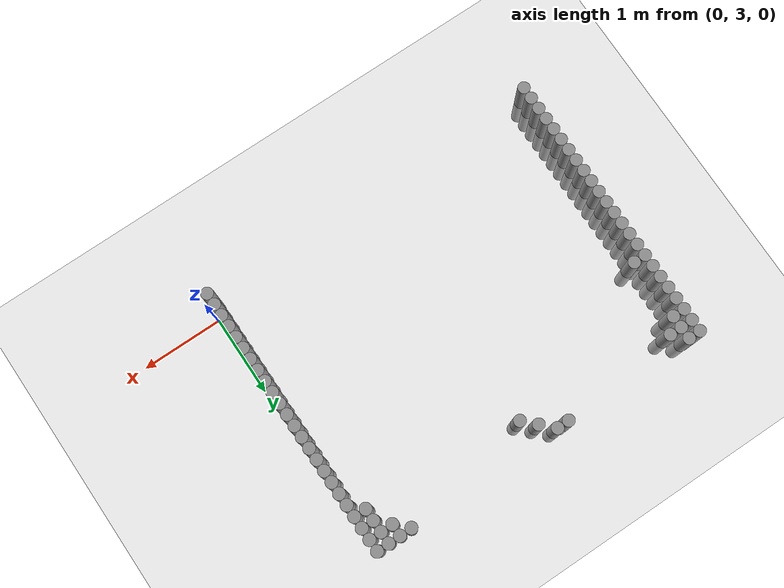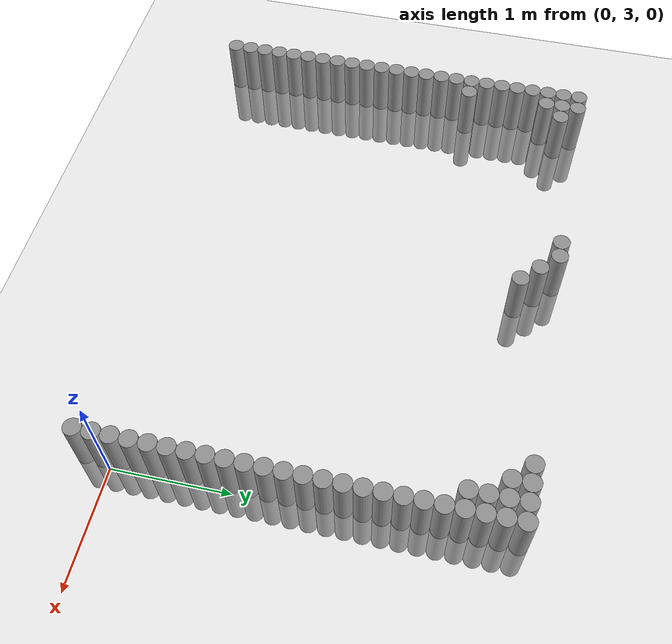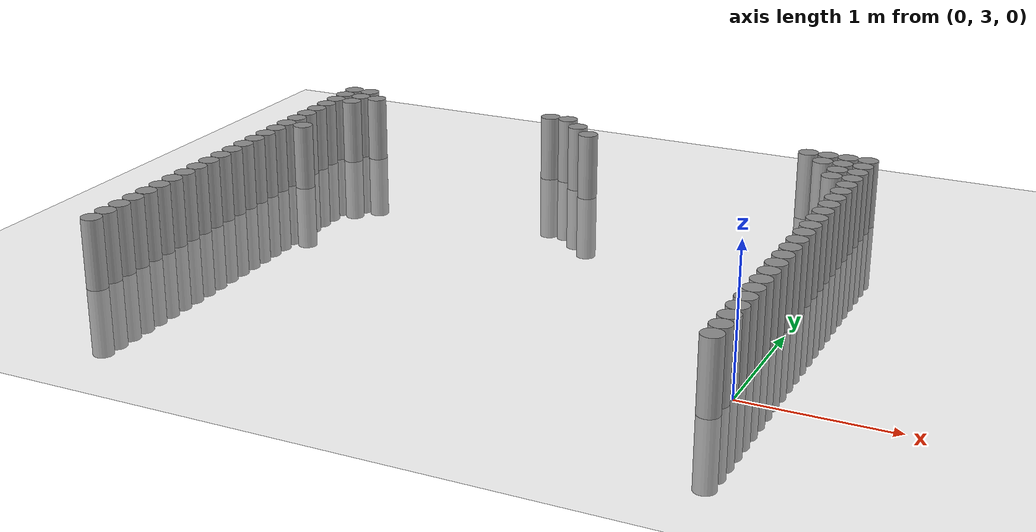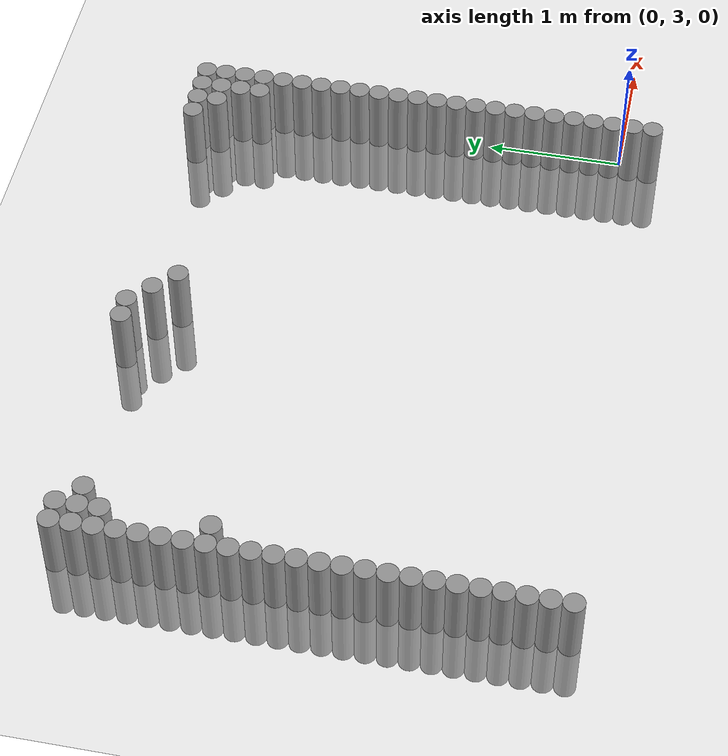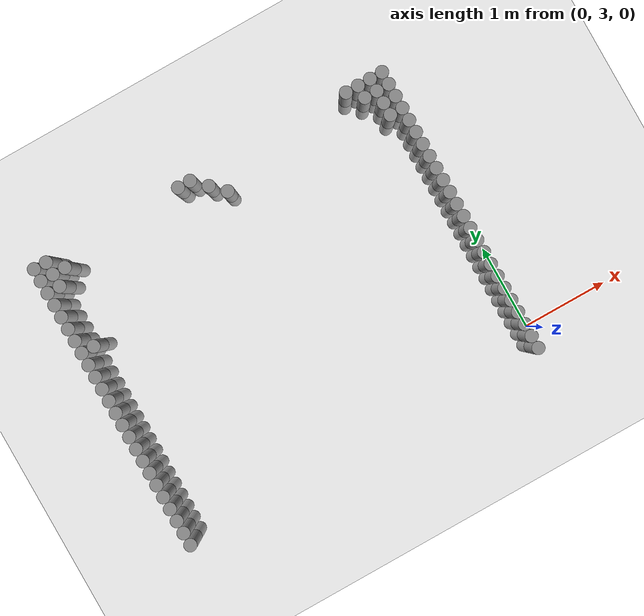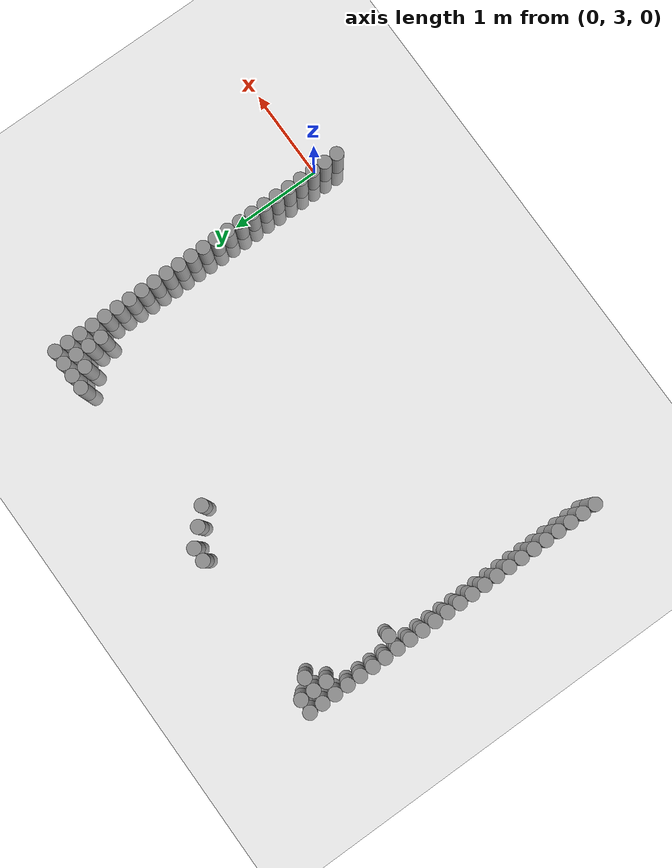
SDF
<sdf version="1.6">
 <world name="default">
  <model name="ground_plane">
   <static>1</static>
   <static>1</static>
   <link name="link">
    <collision name="collision">
     <geometry><plane><normal>0 0 1</normal><size>100 100</size></plane></geometry>
     <surface><friction><ode><mu>100</mu><mu2>50</mu2></ode></friction></surface>
    </collision>
    <visual name="visual">
     <cast_shadows>0</cast_shadows>
     <geometry><plane><normal>0 0 1</normal><size>100 100</size></plane></geometry>
     <material>
      <script><uri>file://media/materials/scripts/gazebo.material</uri><name>Gazebo/Grey</name></script>
     </material>
    </visual>
   </link>
  </model>
  <model name="unit_cylinder_64">
   <static>1</static>
   <pose>-0.075000 2.775000 0.000000 0.000000 0.000000 0.000000</pose>
   <link name="link">
    <inertial>
     <mass>1</mass>
     <inertia><ixx>0.145833</ixx><ixy>0</ixy><ixz>0</ixz><iyy>0.145833</iyy><iyz>0</iyz><izz>0.125</izz></inertia>
    </inertial>
    <collision name="collision">
     <geometry><cylinder><radius>0.075000</radius><length>1</length></cylinder></geometry>
    </collision>
    <visual name="visual">
     <geometry><cylinder><radius>0.075000</radius><length>1</length></cylinder></geometry>
     <material>
      <script><name>Gazebo/Grey</name><uri>file://media/materials/scripts/gazebo.material</uri></script>
     </material>
    </visual>
   </link>
  </model>
  <model name="unit_cylinder_65">
   <static>1</static>
   <pose>-4.425000 2.775000 0.000000 0.000000 0.000000 0.000000</pose>
   <link name="link">
    <inertial>
     <mass>1</mass>
     <inertia><ixx>0.145833</ixx><ixy>0</ixy><ixz>0</ixz><iyy>0.145833</iyy><iyz>0</iyz><izz>0.125</izz></inertia>
    </inertial>
    <collision name="collision">
     <geometry><cylinder><radius>0.075000</radius><length>1</length></cylinder></geometry>
    </collision>
    <visual name="visual">
     <geometry><cylinder><radius>0.075000</radius><length>1</length></cylinder></geometry>
     <material>
      <script><name>Gazebo/Grey</name><uri>file://media/materials/scripts/gazebo.material</uri></script>
     </material>
    </visual>
   </link>
  </model>
  <model name="unit_cylinder_66">
   <static>1</static>
   <pose>-0.075000 2.925000 0.000000 0.000000 0.000000 0.000000</pose>
   <link name="link">
    <inertial>
     <mass>1</mass>
     <inertia><ixx>0.145833</ixx><ixy>0</ixy><ixz>0</ixz><iyy>0.145833</iyy><iyz>0</iyz><izz>0.125</izz></inertia>
    </inertial>
    <collision name="collision">
     <geometry><cylinder><radius>0.075000</radius><length>1</length></cylinder></geometry>
    </collision>
    <visual name="visual">
     <geometry><cylinder><radius>0.075000</radius><length>1</length></cylinder></geometry>
     <material>
      <script><name>Gazebo/Grey</name><uri>file://media/materials/scripts/gazebo.material</uri></script>
     </material>
    </visual>
   </link>
  </model>
  <model name="unit_cylinder_67">
   <static>1</static>
   <pose>-4.425000 2.925000 0.000000 0.000000 0.000000 0.000000</pose>
   <link name="link">
    <inertial>
     <mass>1</mass>
     <inertia><ixx>0.145833</ixx><ixy>0</ixy><ixz>0</ixz><iyy>0.145833</iyy><iyz>0</iyz><izz>0.125</izz></inertia>
    </inertial>
    <collision name="collision">
     <geometry><cylinder><radius>0.075000</radius><length>1</length></cylinder></geometry>
    </collision>
    <visual name="visual">
     <geometry><cylinder><radius>0.075000</radius><length>1</length></cylinder></geometry>
     <material>
      <script><name>Gazebo/Grey</name><uri>file://media/materials/scripts/gazebo.material</uri></script>
     </material>
    </visual>
   </link>
  </model>
  <model name="unit_cylinder_68">
   <static>1</static>
   <pose>-0.075000 3.075000 0.000000 0.000000 0.000000 0.000000</pose>
   <link name="link">
    <inertial>
     <mass>1</mass>
     <inertia><ixx>0.145833</ixx><ixy>0</ixy><ixz>0</ixz><iyy>0.145833</iyy><iyz>0</iyz><izz>0.125</izz></inertia>
    </inertial>
    <collision name="collision">
     <geometry><cylinder><radius>0.075000</radius><length>1</length></cylinder></geometry>
    </collision>
    <visual name="visual">
     <geometry><cylinder><radius>0.075000</radius><length>1</length></cylinder></geometry>
     <material>
      <script><name>Gazebo/Grey</name><uri>file://media/materials/scripts/gazebo.material</uri></script>
     </material>
    </visual>
   </link>
  </model>
  <model name="unit_cylinder_69">
   <static>1</static>
   <pose>-4.425000 3.075000 0.000000 0.000000 0.000000 0.000000</pose>
   <link name="link">
    <inertial>
     <mass>1</mass>
     <inertia><ixx>0.145833</ixx><ixy>0</ixy><ixz>0</ixz><iyy>0.145833</iyy><iyz>0</iyz><izz>0.125</izz></inertia>
    </inertial>
    <collision name="collision">
     <geometry><cylinder><radius>0.075000</radius><length>1</length></cylinder></geometry>
    </collision>
    <visual name="visual">
     <geometry><cylinder><radius>0.075000</radius><length>1</length></cylinder></geometry>
     <material>
      <script><name>Gazebo/Grey</name><uri>file://media/materials/scripts/gazebo.material</uri></script>
     </material>
    </visual>
   </link>
  </model>
  <model name="unit_cylinder_70">
   <static>1</static>
   <pose>-0.075000 3.225000 0.000000 0.000000 0.000000 0.000000</pose>
   <link name="link">
    <inertial>
     <mass>1</mass>
     <inertia><ixx>0.145833</ixx><ixy>0</ixy><ixz>0</ixz><iyy>0.145833</iyy><iyz>0</iyz><izz>0.125</izz></inertia>
    </inertial>
    <collision name="collision">
     <geometry><cylinder><radius>0.075000</radius><length>1</length></cylinder></geometry>
    </collision>
    <visual name="visual">
     <geometry><cylinder><radius>0.075000</radius><length>1</length></cylinder></geometry>
     <material>
      <script><name>Gazebo/Grey</name><uri>file://media/materials/scripts/gazebo.material</uri></script>
     </material>
    </visual>
   </link>
  </model>
  <model name="unit_cylinder_71">
   <static>1</static>
   <pose>-4.425000 3.225000 0.000000 0.000000 0.000000 0.000000</pose>
   <link name="link">
    <inertial>
     <mass>1</mass>
     <inertia><ixx>0.145833</ixx><ixy>0</ixy><ixz>0</ixz><iyy>0.145833</iyy><iyz>0</iyz><izz>0.125</izz></inertia>
    </inertial>
    <collision name="collision">
     <geometry><cylinder><radius>0.075000</radius><length>1</length></cylinder></geometry>
    </collision>
    <visual name="visual">
     <geometry><cylinder><radius>0.075000</radius><length>1</length></cylinder></geometry>
     <material>
      <script><name>Gazebo/Grey</name><uri>file://media/materials/scripts/gazebo.material</uri></script>
     </material>
    </visual>
   </link>
  </model>
  <model name="unit_cylinder_72">
   <static>1</static>
   <pose>-0.075000 3.375000 0.000000 0.000000 0.000000 0.000000</pose>
   <link name="link">
    <inertial>
     <mass>1</mass>
     <inertia><ixx>0.145833</ixx><ixy>0</ixy><ixz>0</ixz><iyy>0.145833</iyy><iyz>0</iyz><izz>0.125</izz></inertia>
    </inertial>
    <collision name="collision">
     <geometry><cylinder><radius>0.075000</radius><length>1</length></cylinder></geometry>
    </collision>
    <visual name="visual">
     <geometry><cylinder><radius>0.075000</radius><length>1</length></cylinder></geometry>
     <material>
      <script><name>Gazebo/Grey</name><uri>file://media/materials/scripts/gazebo.material</uri></script>
     </material>
    </visual>
   </link>
  </model>
  <model name="unit_cylinder_73">
   <static>1</static>
   <pose>-4.425000 3.375000 0.000000 0.000000 0.000000 0.000000</pose>
   <link name="link">
    <inertial>
     <mass>1</mass>
     <inertia><ixx>0.145833</ixx><ixy>0</ixy><ixz>0</ixz><iyy>0.145833</iyy><iyz>0</iyz><izz>0.125</izz></inertia>
    </inertial>
    <collision name="collision">
     <geometry><cylinder><radius>0.075000</radius><length>1</length></cylinder></geometry>
    </collision>
    <visual name="visual">
     <geometry><cylinder><radius>0.075000</radius><length>1</length></cylinder></geometry>
     <material>
      <script><name>Gazebo/Grey</name><uri>file://media/materials/scripts/gazebo.material</uri></script>
     </material>
    </visual>
   </link>
  </model>
  <model name="unit_cylinder_74">
   <static>1</static>
   <pose>-0.075000 3.525000 0.000000 0.000000 0.000000 0.000000</pose>
   <link name="link">
    <inertial>
     <mass>1</mass>
     <inertia><ixx>0.145833</ixx><ixy>0</ixy><ixz>0</ixz><iyy>0.145833</iyy><iyz>0</iyz><izz>0.125</izz></inertia>
    </inertial>
    <collision name="collision">
     <geometry><cylinder><radius>0.075000</radius><length>1</length></cylinder></geometry>
    </collision>
    <visual name="visual">
     <geometry><cylinder><radius>0.075000</radius><length>1</length></cylinder></geometry>
     <material>
      <script><name>Gazebo/Grey</name><uri>file://media/materials/scripts/gazebo.material</uri></script>
     </material>
    </visual>
   </link>
  </model>
  <model name="unit_cylinder_75">
   <static>1</static>
   <pose>-4.425000 3.525000 0.000000 0.000000 0.000000 0.000000</pose>
   <link name="link">
    <inertial>
     <mass>1</mass>
     <inertia><ixx>0.145833</ixx><ixy>0</ixy><ixz>0</ixz><iyy>0.145833</iyy><iyz>0</iyz><izz>0.125</izz></inertia>
    </inertial>
    <collision name="collision">
     <geometry><cylinder><radius>0.075000</radius><length>1</length></cylinder></geometry>
    </collision>
    <visual name="visual">
     <geometry><cylinder><radius>0.075000</radius><length>1</length></cylinder></geometry>
     <material>
      <script><name>Gazebo/Grey</name><uri>file://media/materials/scripts/gazebo.material</uri></script>
     </material>
    </visual>
   </link>
  </model>
  <model name="unit_cylinder_76">
   <static>1</static>
   <pose>-0.075000 3.675000 0.000000 0.000000 0.000000 0.000000</pose>
   <link name="link">
    <inertial>
     <mass>1</mass>
     <inertia><ixx>0.145833</ixx><ixy>0</ixy><ixz>0</ixz><iyy>0.145833</iyy><iyz>0</iyz><izz>0.125</izz></inertia>
    </inertial>
    <collision name="collision">
     <geometry><cylinder><radius>0.075000</radius><length>1</length></cylinder></geometry>
    </collision>
    <visual name="visual">
     <geometry><cylinder><radius>0.075000</radius><length>1</length></cylinder></geometry>
     <material>
      <script><name>Gazebo/Grey</name><uri>file://media/materials/scripts/gazebo.material</uri></script>
     </material>
    </visual>
   </link>
  </model>
  <model name="unit_cylinder_77">
   <static>1</static>
   <pose>-4.425000 3.675000 0.000000 0.000000 0.000000 0.000000</pose>
   <link name="link">
    <inertial>
     <mass>1</mass>
     <inertia><ixx>0.145833</ixx><ixy>0</ixy><ixz>0</ixz><iyy>0.145833</iyy><iyz>0</iyz><izz>0.125</izz></inertia>
    </inertial>
    <collision name="collision">
     <geometry><cylinder><radius>0.075000</radius><length>1</length></cylinder></geometry>
    </collision>
    <visual name="visual">
     <geometry><cylinder><radius>0.075000</radius><length>1</length></cylinder></geometry>
     <material>
      <script><name>Gazebo/Grey</name><uri>file://media/materials/scripts/gazebo.material</uri></script>
     </material>
    </visual>
   </link>
  </model>
  <model name="unit_cylinder_78">
   <static>1</static>
   <pose>-0.075000 3.825000 0.000000 0.000000 0.000000 0.000000</pose>
   <link name="link">
    <inertial>
     <mass>1</mass>
     <inertia><ixx>0.145833</ixx><ixy>0</ixy><ixz>0</ixz><iyy>0.145833</iyy><iyz>0</iyz><izz>0.125</izz></inertia>
    </inertial>
    <collision name="collision">
     <geometry><cylinder><radius>0.075000</radius><length>1</length></cylinder></geometry>
    </collision>
    <visual name="visual">
     <geometry><cylinder><radius>0.075000</radius><length>1</length></cylinder></geometry>
     <material>
      <script><name>Gazebo/Grey</name><uri>file://media/materials/scripts/gazebo.material</uri></script>
     </material>
    </visual>
   </link>
  </model>
  <model name="unit_cylinder_79">
   <static>1</static>
   <pose>-4.425000 3.825000 0.000000 0.000000 0.000000 0.000000</pose>
   <link name="link">
    <inertial>
     <mass>1</mass>
     <inertia><ixx>0.145833</ixx><ixy>0</ixy><ixz>0</ixz><iyy>0.145833</iyy><iyz>0</iyz><izz>0.125</izz></inertia>
    </inertial>
    <collision name="collision">
     <geometry><cylinder><radius>0.075000</radius><length>1</length></cylinder></geometry>
    </collision>
    <visual name="visual">
     <geometry><cylinder><radius>0.075000</radius><length>1</length></cylinder></geometry>
     <material>
      <script><name>Gazebo/Grey</name><uri>file://media/materials/scripts/gazebo.material</uri></script>
     </material>
    </visual>
   </link>
  </model>
  <model name="unit_cylinder_80">
   <static>1</static>
   <pose>-0.075000 3.975000 0.000000 0.000000 0.000000 0.000000</pose>
   <link name="link">
    <inertial>
     <mass>1</mass>
     <inertia><ixx>0.145833</ixx><ixy>0</ixy><ixz>0</ixz><iyy>0.145833</iyy><iyz>0</iyz><izz>0.125</izz></inertia>
    </inertial>
    <collision name="collision">
     <geometry><cylinder><radius>0.075000</radius><length>1</length></cylinder></geometry>
    </collision>
    <visual name="visual">
     <geometry><cylinder><radius>0.075000</radius><length>1</length></cylinder></geometry>
     <material>
      <script><name>Gazebo/Grey</name><uri>file://media/materials/scripts/gazebo.material</uri></script>
     </material>
    </visual>
   </link>
  </model>
  <model name="unit_cylinder_81">
   <static>1</static>
   <pose>-4.425000 3.975000 0.000000 0.000000 0.000000 0.000000</pose>
   <link name="link">
    <inertial>
     <mass>1</mass>
     <inertia><ixx>0.145833</ixx><ixy>0</ixy><ixz>0</ixz><iyy>0.145833</iyy><iyz>0</iyz><izz>0.125</izz></inertia>
    </inertial>
    <collision name="collision">
     <geometry><cylinder><radius>0.075000</radius><length>1</length></cylinder></geometry>
    </collision>
    <visual name="visual">
     <geometry><cylinder><radius>0.075000</radius><length>1</length></cylinder></geometry>
     <material>
      <script><name>Gazebo/Grey</name><uri>file://media/materials/scripts/gazebo.material</uri></script>
     </material>
    </visual>
   </link>
  </model>
  <model name="unit_cylinder_82">
   <static>1</static>
   <pose>-0.075000 4.125000 0.000000 0.000000 0.000000 0.000000</pose>
   <link name="link">
    <inertial>
     <mass>1</mass>
     <inertia><ixx>0.145833</ixx><ixy>0</ixy><ixz>0</ixz><iyy>0.145833</iyy><iyz>0</iyz><izz>0.125</izz></inertia>
    </inertial>
    <collision name="collision">
     <geometry><cylinder><radius>0.075000</radius><length>1</length></cylinder></geometry>
    </collision>
    <visual name="visual">
     <geometry><cylinder><radius>0.075000</radius><length>1</length></cylinder></geometry>
     <material>
      <script><name>Gazebo/Grey</name><uri>file://media/materials/scripts/gazebo.material</uri></script>
     </material>
    </visual>
   </link>
  </model>
  <model name="unit_cylinder_83">
   <static>1</static>
   <pose>-4.425000 4.125000 0.000000 0.000000 0.000000 0.000000</pose>
   <link name="link">
    <inertial>
     <mass>1</mass>
     <inertia><ixx>0.145833</ixx><ixy>0</ixy><ixz>0</ixz><iyy>0.145833</iyy><iyz>0</iyz><izz>0.125</izz></inertia>
    </inertial>
    <collision name="collision">
     <geometry><cylinder><radius>0.075000</radius><length>1</length></cylinder></geometry>
    </collision>
    <visual name="visual">
     <geometry><cylinder><radius>0.075000</radius><length>1</length></cylinder></geometry>
     <material>
      <script><name>Gazebo/Grey</name><uri>file://media/materials/scripts/gazebo.material</uri></script>
     </material>
    </visual>
   </link>
  </model>
  <model name="unit_cylinder_84">
   <static>1</static>
   <pose>-0.075000 4.275000 0.000000 0.000000 0.000000 0.000000</pose>
   <link name="link">
    <inertial>
     <mass>1</mass>
     <inertia><ixx>0.145833</ixx><ixy>0</ixy><ixz>0</ixz><iyy>0.145833</iyy><iyz>0</iyz><izz>0.125</izz></inertia>
    </inertial>
    <collision name="collision">
     <geometry><cylinder><radius>0.075000</radius><length>1</length></cylinder></geometry>
    </collision>
    <visual name="visual">
     <geometry><cylinder><radius>0.075000</radius><length>1</length></cylinder></geometry>
     <material>
      <script><name>Gazebo/Grey</name><uri>file://media/materials/scripts/gazebo.material</uri></script>
     </material>
    </visual>
   </link>
  </model>
  <model name="unit_cylinder_85">
   <static>1</static>
   <pose>-4.425000 4.275000 0.000000 0.000000 0.000000 0.000000</pose>
   <link name="link">
    <inertial>
     <mass>1</mass>
     <inertia><ixx>0.145833</ixx><ixy>0</ixy><ixz>0</ixz><iyy>0.145833</iyy><iyz>0</iyz><izz>0.125</izz></inertia>
    </inertial>
    <collision name="collision">
     <geometry><cylinder><radius>0.075000</radius><length>1</length></cylinder></geometry>
    </collision>
    <visual name="visual">
     <geometry><cylinder><radius>0.075000</radius><length>1</length></cylinder></geometry>
     <material>
      <script><name>Gazebo/Grey</name><uri>file://media/materials/scripts/gazebo.material</uri></script>
     </material>
    </visual>
   </link>
  </model>
  <model name="unit_cylinder_86">
   <static>1</static>
   <pose>-0.075000 4.425000 0.000000 0.000000 0.000000 0.000000</pose>
   <link name="link">
    <inertial>
     <mass>1</mass>
     <inertia><ixx>0.145833</ixx><ixy>0</ixy><ixz>0</ixz><iyy>0.145833</iyy><iyz>0</iyz><izz>0.125</izz></inertia>
    </inertial>
    <collision name="collision">
     <geometry><cylinder><radius>0.075000</radius><length>1</length></cylinder></geometry>
    </collision>
    <visual name="visual">
     <geometry><cylinder><radius>0.075000</radius><length>1</length></cylinder></geometry>
     <material>
      <script><name>Gazebo/Grey</name><uri>file://media/materials/scripts/gazebo.material</uri></script>
     </material>
    </visual>
   </link>
  </model>
  <model name="unit_cylinder_87">
   <static>1</static>
   <pose>-4.425000 4.425000 0.000000 0.000000 0.000000 0.000000</pose>
   <link name="link">
    <inertial>
     <mass>1</mass>
     <inertia><ixx>0.145833</ixx><ixy>0</ixy><ixz>0</ixz><iyy>0.145833</iyy><iyz>0</iyz><izz>0.125</izz></inertia>
    </inertial>
    <collision name="collision">
     <geometry><cylinder><radius>0.075000</radius><length>1</length></cylinder></geometry>
    </collision>
    <visual name="visual">
     <geometry><cylinder><radius>0.075000</radius><length>1</length></cylinder></geometry>
     <material>
      <script><name>Gazebo/Grey</name><uri>file://media/materials/scripts/gazebo.material</uri></script>
     </material>
    </visual>
   </link>
  </model>
  <model name="unit_cylinder_88">
   <static>1</static>
   <pose>-0.075000 4.575000 0.000000 0.000000 0.000000 0.000000</pose>
   <link name="link">
    <inertial>
     <mass>1</mass>
     <inertia><ixx>0.145833</ixx><ixy>0</ixy><ixz>0</ixz><iyy>0.145833</iyy><iyz>0</iyz><izz>0.125</izz></inertia>
    </inertial>
    <collision name="collision">
     <geometry><cylinder><radius>0.075000</radius><length>1</length></cylinder></geometry>
    </collision>
    <visual name="visual">
     <geometry><cylinder><radius>0.075000</radius><length>1</length></cylinder></geometry>
     <material>
      <script><name>Gazebo/Grey</name><uri>file://media/materials/scripts/gazebo.material</uri></script>
     </material>
    </visual>
   </link>
  </model>
  <model name="unit_cylinder_89">
   <static>1</static>
   <pose>-4.425000 4.575000 0.000000 0.000000 0.000000 0.000000</pose>
   <link name="link">
    <inertial>
     <mass>1</mass>
     <inertia><ixx>0.145833</ixx><ixy>0</ixy><ixz>0</ixz><iyy>0.145833</iyy><iyz>0</iyz><izz>0.125</izz></inertia>
    </inertial>
    <collision name="collision">
     <geometry><cylinder><radius>0.075000</radius><length>1</length></cylinder></geometry>
    </collision>
    <visual name="visual">
     <geometry><cylinder><radius>0.075000</radius><length>1</length></cylinder></geometry>
     <material>
      <script><name>Gazebo/Grey</name><uri>file://media/materials/scripts/gazebo.material</uri></script>
     </material>
    </visual>
   </link>
  </model>
  <model name="unit_cylinder_90">
   <static>1</static>
   <pose>-0.075000 4.725000 0.000000 0.000000 0.000000 0.000000</pose>
   <link name="link">
    <inertial>
     <mass>1</mass>
     <inertia><ixx>0.145833</ixx><ixy>0</ixy><ixz>0</ixz><iyy>0.145833</iyy><iyz>0</iyz><izz>0.125</izz></inertia>
    </inertial>
    <collision name="collision">
     <geometry><cylinder><radius>0.075000</radius><length>1</length></cylinder></geometry>
    </collision>
    <visual name="visual">
     <geometry><cylinder><radius>0.075000</radius><length>1</length></cylinder></geometry>
     <material>
      <script><name>Gazebo/Grey</name><uri>file://media/materials/scripts/gazebo.material</uri></script>
     </material>
    </visual>
   </link>
  </model>
  <model name="unit_cylinder_91">
   <static>1</static>
   <pose>-4.425000 4.725000 0.000000 0.000000 0.000000 0.000000</pose>
   <link name="link">
    <inertial>
     <mass>1</mass>
     <inertia><ixx>0.145833</ixx><ixy>0</ixy><ixz>0</ixz><iyy>0.145833</iyy><iyz>0</iyz><izz>0.125</izz></inertia>
    </inertial>
    <collision name="collision">
     <geometry><cylinder><radius>0.075000</radius><length>1</length></cylinder></geometry>
    </collision>
    <visual name="visual">
     <geometry><cylinder><radius>0.075000</radius><length>1</length></cylinder></geometry>
     <material>
      <script><name>Gazebo/Grey</name><uri>file://media/materials/scripts/gazebo.material</uri></script>
     </material>
    </visual>
   </link>
  </model>
  <model name="unit_cylinder_92">
   <static>1</static>
   <pose>-0.075000 4.875000 0.000000 0.000000 0.000000 0.000000</pose>
   <link name="link">
    <inertial>
     <mass>1</mass>
     <inertia><ixx>0.145833</ixx><ixy>0</ixy><ixz>0</ixz><iyy>0.145833</iyy><iyz>0</iyz><izz>0.125</izz></inertia>
    </inertial>
    <collision name="collision">
     <geometry><cylinder><radius>0.075000</radius><length>1</length></cylinder></geometry>
    </collision>
    <visual name="visual">
     <geometry><cylinder><radius>0.075000</radius><length>1</length></cylinder></geometry>
     <material>
      <script><name>Gazebo/Grey</name><uri>file://media/materials/scripts/gazebo.material</uri></script>
     </material>
    </visual>
   </link>
  </model>
  <model name="unit_cylinder_93">
   <static>1</static>
   <pose>-4.425000 4.875000 0.000000 0.000000 0.000000 0.000000</pose>
   <link name="link">
    <inertial>
     <mass>1</mass>
     <inertia><ixx>0.145833</ixx><ixy>0</ixy><ixz>0</ixz><iyy>0.145833</iyy><iyz>0</iyz><izz>0.125</izz></inertia>
    </inertial>
    <collision name="collision">
     <geometry><cylinder><radius>0.075000</radius><length>1</length></cylinder></geometry>
    </collision>
    <visual name="visual">
     <geometry><cylinder><radius>0.075000</radius><length>1</length></cylinder></geometry>
     <material>
      <script><name>Gazebo/Grey</name><uri>file://media/materials/scripts/gazebo.material</uri></script>
     </material>
    </visual>
   </link>
  </model>
  <model name="unit_cylinder_94">
   <static>1</static>
   <pose>-0.075000 5.025000 0.000000 0.000000 0.000000 0.000000</pose>
   <link name="link">
    <inertial>
     <mass>1</mass>
     <inertia><ixx>0.145833</ixx><ixy>0</ixy><ixz>0</ixz><iyy>0.145833</iyy><iyz>0</iyz><izz>0.125</izz></inertia>
    </inertial>
    <collision name="collision">
     <geometry><cylinder><radius>0.075000</radius><length>1</length></cylinder></geometry>
    </collision>
    <visual name="visual">
     <geometry><cylinder><radius>0.075000</radius><length>1</length></cylinder></geometry>
     <material>
      <script><name>Gazebo/Grey</name><uri>file://media/materials/scripts/gazebo.material</uri></script>
     </material>
    </visual>
   </link>
  </model>
  <model name="unit_cylinder_95">
   <static>1</static>
   <pose>-4.425000 5.025000 0.000000 0.000000 0.000000 0.000000</pose>
   <link name="link">
    <inertial>
     <mass>1</mass>
     <inertia><ixx>0.145833</ixx><ixy>0</ixy><ixz>0</ixz><iyy>0.145833</iyy><iyz>0</iyz><izz>0.125</izz></inertia>
    </inertial>
    <collision name="collision">
     <geometry><cylinder><radius>0.075000</radius><length>1</length></cylinder></geometry>
    </collision>
    <visual name="visual">
     <geometry><cylinder><radius>0.075000</radius><length>1</length></cylinder></geometry>
     <material>
      <script><name>Gazebo/Grey</name><uri>file://media/materials/scripts/gazebo.material</uri></script>
     </material>
    </visual>
   </link>
  </model>
  <model name="unit_cylinder_96">
   <static>1</static>
   <pose>-4.425000 5.175000 0.000000 0.000000 0.000000 0.000000</pose>
   <link name="link">
    <inertial>
     <mass>1</mass>
     <inertia><ixx>0.145833</ixx><ixy>0</ixy><ixz>0</ixz><iyy>0.145833</iyy><iyz>0</iyz><izz>0.125</izz></inertia>
    </inertial>
    <collision name="collision">
     <geometry><cylinder><radius>0.075000</radius><length>1</length></cylinder></geometry>
    </collision>
    <visual name="visual">
     <geometry><cylinder><radius>0.075000</radius><length>1</length></cylinder></geometry>
     <material>
      <script><name>Gazebo/Grey</name><uri>file://media/materials/scripts/gazebo.material</uri></script>
     </material>
    </visual>
   </link>
  </model>
  <model name="unit_cylinder_97">
   <static>1</static>
   <pose>-4.425000 5.325000 0.000000 0.000000 0.000000 0.000000</pose>
   <link name="link">
    <inertial>
     <mass>1</mass>
     <inertia><ixx>0.145833</ixx><ixy>0</ixy><ixz>0</ixz><iyy>0.145833</iyy><iyz>0</iyz><izz>0.125</izz></inertia>
    </inertial>
    <collision name="collision">
     <geometry><cylinder><radius>0.075000</radius><length>1</length></cylinder></geometry>
    </collision>
    <visual name="visual">
     <geometry><cylinder><radius>0.075000</radius><length>1</length></cylinder></geometry>
     <material>
      <script><name>Gazebo/Grey</name><uri>file://media/materials/scripts/gazebo.material</uri></script>
     </material>
    </visual>
   </link>
  </model>
  <model name="unit_cylinder_98">
   <static>1</static>
   <pose>-4.425000 5.475000 0.000000 0.000000 0.000000 0.000000</pose>
   <link name="link">
    <inertial>
     <mass>1</mass>
     <inertia><ixx>0.145833</ixx><ixy>0</ixy><ixz>0</ixz><iyy>0.145833</iyy><iyz>0</iyz><izz>0.125</izz></inertia>
    </inertial>
    <collision name="collision">
     <geometry><cylinder><radius>0.075000</radius><length>1</length></cylinder></geometry>
    </collision>
    <visual name="visual">
     <geometry><cylinder><radius>0.075000</radius><length>1</length></cylinder></geometry>
     <material>
      <script><name>Gazebo/Grey</name><uri>file://media/materials/scripts/gazebo.material</uri></script>
     </material>
    </visual>
   </link>
  </model>
  <model name="unit_cylinder_99">
   <static>1</static>
   <pose>-4.425000 5.625000 0.000000 0.000000 0.000000 0.000000</pose>
   <link name="link">
    <inertial>
     <mass>1</mass>
     <inertia><ixx>0.145833</ixx><ixy>0</ixy><ixz>0</ixz><iyy>0.145833</iyy><iyz>0</iyz><izz>0.125</izz></inertia>
    </inertial>
    <collision name="collision">
     <geometry><cylinder><radius>0.075000</radius><length>1</length></cylinder></geometry>
    </collision>
    <visual name="visual">
     <geometry><cylinder><radius>0.075000</radius><length>1</length></cylinder></geometry>
     <material>
      <script><name>Gazebo/Grey</name><uri>file://media/materials/scripts/gazebo.material</uri></script>
     </material>
    </visual>
   </link>
  </model>
  <model name="unit_cylinder_100">
   <static>1</static>
   <pose>-4.425000 5.775000 0.000000 0.000000 0.000000 0.000000</pose>
   <link name="link">
    <inertial>
     <mass>1</mass>
     <inertia><ixx>0.145833</ixx><ixy>0</ixy><ixz>0</ixz><iyy>0.145833</iyy><iyz>0</iyz><izz>0.125</izz></inertia>
    </inertial>
    <collision name="collision">
     <geometry><cylinder><radius>0.075000</radius><length>1</length></cylinder></geometry>
    </collision>
    <visual name="visual">
     <geometry><cylinder><radius>0.075000</radius><length>1</length></cylinder></geometry>
     <material>
      <script><name>Gazebo/Grey</name><uri>file://media/materials/scripts/gazebo.material</uri></script>
     </material>
    </visual>
   </link>
  </model>
  <model name="unit_cylinder_101">
   <static>1</static>
   <pose>-4.425000 5.925000 0.000000 0.000000 0.000000 0.000000</pose>
   <link name="link">
    <inertial>
     <mass>1</mass>
     <inertia><ixx>0.145833</ixx><ixy>0</ixy><ixz>0</ixz><iyy>0.145833</iyy><iyz>0</iyz><izz>0.125</izz></inertia>
    </inertial>
    <collision name="collision">
     <geometry><cylinder><radius>0.075000</radius><length>1</length></cylinder></geometry>
    </collision>
    <visual name="visual">
     <geometry><cylinder><radius>0.075000</radius><length>1</length></cylinder></geometry>
     <material>
      <script><name>Gazebo/Grey</name><uri>file://media/materials/scripts/gazebo.material</uri></script>
     </material>
    </visual>
   </link>
  </model>
  <model name="unit_cylinder_102">
   <static>1</static>
   <pose>-4.425000 6.075000 0.000000 0.000000 0.000000 0.000000</pose>
   <link name="link">
    <inertial>
     <mass>1</mass>
     <inertia><ixx>0.145833</ixx><ixy>0</ixy><ixz>0</ixz><iyy>0.145833</iyy><iyz>0</iyz><izz>0.125</izz></inertia>
    </inertial>
    <collision name="collision">
     <geometry><cylinder><radius>0.075000</radius><length>1</length></cylinder></geometry>
    </collision>
    <visual name="visual">
     <geometry><cylinder><radius>0.075000</radius><length>1</length></cylinder></geometry>
     <material>
      <script><name>Gazebo/Grey</name><uri>file://media/materials/scripts/gazebo.material</uri></script>
     </material>
    </visual>
   </link>
  </model>
  <model name="unit_cylinder_103">
   <static>1</static>
   <pose>-4.425000 6.225000 0.000000 0.000000 0.000000 0.000000</pose>
   <link name="link">
    <inertial>
     <mass>1</mass>
     <inertia><ixx>0.145833</ixx><ixy>0</ixy><ixz>0</ixz><iyy>0.145833</iyy><iyz>0</iyz><izz>0.125</izz></inertia>
    </inertial>
    <collision name="collision">
     <geometry><cylinder><radius>0.075000</radius><length>1</length></cylinder></geometry>
    </collision>
    <visual name="visual">
     <geometry><cylinder><radius>0.075000</radius><length>1</length></cylinder></geometry>
     <material>
      <script><name>Gazebo/Grey</name><uri>file://media/materials/scripts/gazebo.material</uri></script>
     </material>
    </visual>
   </link>
  </model>
  <model name="unit_cylinder_126">
   <static>1</static>
   <pose>-4.275000 5.175000 0.000000 0.000000 0.000000 0.000000</pose>
   <link name="link">
    <inertial>
     <mass>1</mass>
     <inertia><ixx>0.145833</ixx><ixy>0</ixy><ixz>0</ixz><iyy>0.145833</iyy><iyz>0</iyz><izz>0.125</izz></inertia>
    </inertial>
    <collision name="collision">
     <geometry><cylinder><radius>0.075000</radius><length>1</length></cylinder></geometry>
    </collision>
    <visual name="visual">
     <geometry><cylinder><radius>0.075000</radius><length>1</length></cylinder></geometry>
     <material>
      <script><name>Gazebo/Grey</name><uri>file://media/materials/scripts/gazebo.material</uri></script>
     </material>
    </visual>
   </link>
  </model>
  <model name="unit_cylinder_127">
   <static>1</static>
   <pose>-4.275000 5.925000 0.000000 0.000000 0.000000 0.000000</pose>
   <link name="link">
    <inertial>
     <mass>1</mass>
     <inertia><ixx>0.145833</ixx><ixy>0</ixy><ixz>0</ixz><iyy>0.145833</iyy><iyz>0</iyz><izz>0.125</izz></inertia>
    </inertial>
    <collision name="collision">
     <geometry><cylinder><radius>0.075000</radius><length>1</length></cylinder></geometry>
    </collision>
    <visual name="visual">
     <geometry><cylinder><radius>0.075000</radius><length>1</length></cylinder></geometry>
     <material>
      <script><name>Gazebo/Grey</name><uri>file://media/materials/scripts/gazebo.material</uri></script>
     </material>
    </visual>
   </link>
  </model>
  <model name="unit_cylinder_128">
   <static>1</static>
   <pose>-4.275000 6.075000 0.000000 0.000000 0.000000 0.000000</pose>
   <link name="link">
    <inertial>
     <mass>1</mass>
     <inertia><ixx>0.145833</ixx><ixy>0</ixy><ixz>0</ixz><iyy>0.145833</iyy><iyz>0</iyz><izz>0.125</izz></inertia>
    </inertial>
    <collision name="collision">
     <geometry><cylinder><radius>0.075000</radius><length>1</length></cylinder></geometry>
    </collision>
    <visual name="visual">
     <geometry><cylinder><radius>0.075000</radius><length>1</length></cylinder></geometry>
     <material>
      <script><name>Gazebo/Grey</name><uri>file://media/materials/scripts/gazebo.material</uri></script>
     </material>
    </visual>
   </link>
  </model>
  <model name="unit_cylinder_129">
   <static>1</static>
   <pose>-4.275000 6.225000 0.000000 0.000000 0.000000 0.000000</pose>
   <link name="link">
    <inertial>
     <mass>1</mass>
     <inertia><ixx>0.145833</ixx><ixy>0</ixy><ixz>0</ixz><iyy>0.145833</iyy><iyz>0</iyz><izz>0.125</izz></inertia>
    </inertial>
    <collision name="collision">
     <geometry><cylinder><radius>0.075000</radius><length>1</length></cylinder></geometry>
    </collision>
    <visual name="visual">
     <geometry><cylinder><radius>0.075000</radius><length>1</length></cylinder></geometry>
     <material>
      <script><name>Gazebo/Grey</name><uri>file://media/materials/scripts/gazebo.material</uri></script>
     </material>
    </visual>
   </link>
  </model>
  <model name="unit_cylinder_142">
   <static>1</static>
   <pose>-4.125000 6.075000 0.000000 0.000000 0.000000 0.000000</pose>
   <link name="link">
    <inertial>
     <mass>1</mass>
     <inertia><ixx>0.145833</ixx><ixy>0</ixy><ixz>0</ixz><iyy>0.145833</iyy><iyz>0</iyz><izz>0.125</izz></inertia>
    </inertial>
    <collision name="collision">
     <geometry><cylinder><radius>0.075000</radius><length>1</length></cylinder></geometry>
    </collision>
    <visual name="visual">
     <geometry><cylinder><radius>0.075000</radius><length>1</length></cylinder></geometry>
     <material>
      <script><name>Gazebo/Grey</name><uri>file://media/materials/scripts/gazebo.material</uri></script>
     </material>
    </visual>
   </link>
  </model>
  <model name="unit_cylinder_160">
   <static>1</static>
   <pose>-2.625000 6.225000 0.000000 0.000000 0.000000 0.000000</pose>
   <link name="link">
    <inertial>
     <mass>1</mass>
     <inertia><ixx>0.145833</ixx><ixy>0</ixy><ixz>0</ixz><iyy>0.145833</iyy><iyz>0</iyz><izz>0.125</izz></inertia>
    </inertial>
    <collision name="collision">
     <geometry><cylinder><radius>0.075000</radius><length>1</length></cylinder></geometry>
    </collision>
    <visual name="visual">
     <geometry><cylinder><radius>0.075000</radius><length>1</length></cylinder></geometry>
     <material>
      <script><name>Gazebo/Grey</name><uri>file://media/materials/scripts/gazebo.material</uri></script>
     </material>
    </visual>
   </link>
  </model>
  <model name="unit_cylinder_161">
   <static>1</static>
   <pose>-2.475000 6.225000 0.000000 0.000000 0.000000 0.000000</pose>
   <link name="link">
    <inertial>
     <mass>1</mass>
     <inertia><ixx>0.145833</ixx><ixy>0</ixy><ixz>0</ixz><iyy>0.145833</iyy><iyz>0</iyz><izz>0.125</izz></inertia>
    </inertial>
    <collision name="collision">
     <geometry><cylinder><radius>0.075000</radius><length>1</length></cylinder></geometry>
    </collision>
    <visual name="visual">
     <geometry><cylinder><radius>0.075000</radius><length>1</length></cylinder></geometry>
     <material>
      <script><name>Gazebo/Grey</name><uri>file://media/materials/scripts/gazebo.material</uri></script>
     </material>
    </visual>
   </link>
  </model>
  <model name="unit_cylinder_162">
   <static>1</static>
   <pose>-2.325000 6.075000 0.000000 0.000000 0.000000 0.000000</pose>
   <link name="link">
    <inertial>
     <mass>1</mass>
     <inertia><ixx>0.145833</ixx><ixy>0</ixy><ixz>0</ixz><iyy>0.145833</iyy><iyz>0</iyz><izz>0.125</izz></inertia>
    </inertial>
    <collision name="collision">
     <geometry><cylinder><radius>0.075000</radius><length>1</length></cylinder></geometry>
    </collision>
    <visual name="visual">
     <geometry><cylinder><radius>0.075000</radius><length>1</length></cylinder></geometry>
     <material>
      <script><name>Gazebo/Grey</name><uri>file://media/materials/scripts/gazebo.material</uri></script>
     </material>
    </visual>
   </link>
  </model>
  <model name="unit_cylinder_165">
   <static>1</static>
   <pose>-2.175000 5.925000 0.000000 0.000000 0.000000 0.000000</pose>
   <link name="link">
    <inertial>
     <mass>1</mass>
     <inertia><ixx>0.145833</ixx><ixy>0</ixy><ixz>0</ixz><iyy>0.145833</iyy><iyz>0</iyz><izz>0.125</izz></inertia>
    </inertial>
    <collision name="collision">
     <geometry><cylinder><radius>0.075000</radius><length>1</length></cylinder></geometry>
    </collision>
    <visual name="visual">
     <geometry><cylinder><radius>0.075000</radius><length>1</length></cylinder></geometry>
     <material>
      <script><name>Gazebo/Grey</name><uri>file://media/materials/scripts/gazebo.material</uri></script>
     </material>
    </visual>
   </link>
  </model>
  <model name="unit_cylinder_200">
   <static>1</static>
   <pose>-0.525000 6.225000 0.000000 0.000000 0.000000 0.000000</pose>
   <link name="link">
    <inertial>
     <mass>1</mass>
     <inertia><ixx>0.145833</ixx><ixy>0</ixy><ixz>0</ixz><iyy>0.145833</iyy><iyz>0</iyz><izz>0.125</izz></inertia>
    </inertial>
    <collision name="collision">
     <geometry><cylinder><radius>0.075000</radius><length>1</length></cylinder></geometry>
    </collision>
    <visual name="visual">
     <geometry><cylinder><radius>0.075000</radius><length>1</length></cylinder></geometry>
     <material>
      <script><name>Gazebo/Grey</name><uri>file://media/materials/scripts/gazebo.material</uri></script>
     </material>
    </visual>
   </link>
  </model>
  <model name="unit_cylinder_206">
   <static>1</static>
   <pose>-0.375000 6.075000 0.000000 0.000000 0.000000 0.000000</pose>
   <link name="link">
    <inertial>
     <mass>1</mass>
     <inertia><ixx>0.145833</ixx><ixy>0</ixy><ixz>0</ixz><iyy>0.145833</iyy><iyz>0</iyz><izz>0.125</izz></inertia>
    </inertial>
    <collision name="collision">
     <geometry><cylinder><radius>0.075000</radius><length>1</length></cylinder></geometry>
    </collision>
    <visual name="visual">
     <geometry><cylinder><radius>0.075000</radius><length>1</length></cylinder></geometry>
     <material>
      <script><name>Gazebo/Grey</name><uri>file://media/materials/scripts/gazebo.material</uri></script>
     </material>
    </visual>
   </link>
  </model>
  <model name="unit_cylinder_207">
   <static>1</static>
   <pose>-0.375000 6.225000 0.000000 0.000000 0.000000 0.000000</pose>
   <link name="link">
    <inertial>
     <mass>1</mass>
     <inertia><ixx>0.145833</ixx><ixy>0</ixy><ixz>0</ixz><iyy>0.145833</iyy><iyz>0</iyz><izz>0.125</izz></inertia>
    </inertial>
    <collision name="collision">
     <geometry><cylinder><radius>0.075000</radius><length>1</length></cylinder></geometry>
    </collision>
    <visual name="visual">
     <geometry><cylinder><radius>0.075000</radius><length>1</length></cylinder></geometry>
     <material>
      <script><name>Gazebo/Grey</name><uri>file://media/materials/scripts/gazebo.material</uri></script>
     </material>
    </visual>
   </link>
  </model>
  <model name="unit_cylinder_212">
   <static>1</static>
   <pose>-0.225000 5.775000 0.000000 0.000000 0.000000 0.000000</pose>
   <link name="link">
    <inertial>
     <mass>1</mass>
     <inertia><ixx>0.145833</ixx><ixy>0</ixy><ixz>0</ixz><iyy>0.145833</iyy><iyz>0</iyz><izz>0.125</izz></inertia>
    </inertial>
    <collision name="collision">
     <geometry><cylinder><radius>0.075000</radius><length>1</length></cylinder></geometry>
    </collision>
    <visual name="visual">
     <geometry><cylinder><radius>0.075000</radius><length>1</length></cylinder></geometry>
     <material>
      <script><name>Gazebo/Grey</name><uri>file://media/materials/scripts/gazebo.material</uri></script>
     </material>
    </visual>
   </link>
  </model>
  <model name="unit_cylinder_213">
   <static>1</static>
   <pose>-0.225000 5.925000 0.000000 0.000000 0.000000 0.000000</pose>
   <link name="link">
    <inertial>
     <mass>1</mass>
     <inertia><ixx>0.145833</ixx><ixy>0</ixy><ixz>0</ixz><iyy>0.145833</iyy><iyz>0</iyz><izz>0.125</izz></inertia>
    </inertial>
    <collision name="collision">
     <geometry><cylinder><radius>0.075000</radius><length>1</length></cylinder></geometry>
    </collision>
    <visual name="visual">
     <geometry><cylinder><radius>0.075000</radius><length>1</length></cylinder></geometry>
     <material>
      <script><name>Gazebo/Grey</name><uri>file://media/materials/scripts/gazebo.material</uri></script>
     </material>
    </visual>
   </link>
  </model>
  <model name="unit_cylinder_214">
   <static>1</static>
   <pose>-0.225000 6.075000 0.000000 0.000000 0.000000 0.000000</pose>
   <link name="link">
    <inertial>
     <mass>1</mass>
     <inertia><ixx>0.145833</ixx><ixy>0</ixy><ixz>0</ixz><iyy>0.145833</iyy><iyz>0</iyz><izz>0.125</izz></inertia>
    </inertial>
    <collision name="collision">
     <geometry><cylinder><radius>0.075000</radius><length>1</length></cylinder></geometry>
    </collision>
    <visual name="visual">
     <geometry><cylinder><radius>0.075000</radius><length>1</length></cylinder></geometry>
     <material>
      <script><name>Gazebo/Grey</name><uri>file://media/materials/scripts/gazebo.material</uri></script>
     </material>
    </visual>
   </link>
  </model>
  <model name="unit_cylinder_215">
   <static>1</static>
   <pose>-0.225000 6.225000 0.000000 0.000000 0.000000 0.000000</pose>
   <link name="link">
    <inertial>
     <mass>1</mass>
     <inertia><ixx>0.145833</ixx><ixy>0</ixy><ixz>0</ixz><iyy>0.145833</iyy><iyz>0</iyz><izz>0.125</izz></inertia>
    </inertial>
    <collision name="collision">
     <geometry><cylinder><radius>0.075000</radius><length>1</length></cylinder></geometry>
    </collision>
    <visual name="visual">
     <geometry><cylinder><radius>0.075000</radius><length>1</length></cylinder></geometry>
     <material>
      <script><name>Gazebo/Grey</name><uri>file://media/materials/scripts/gazebo.material</uri></script>
     </material>
    </visual>
   </link>
  </model>
  <model name="unit_cylinder_225">
   <static>1</static>
   <pose>-0.075000 5.175000 0.000000 0.000000 0.000000 0.000000</pose>
   <link name="link">
    <inertial>
     <mass>1</mass>
     <inertia><ixx>0.145833</ixx><ixy>0</ixy><ixz>0</ixz><iyy>0.145833</iyy><iyz>0</iyz><izz>0.125</izz></inertia>
    </inertial>
    <collision name="collision">
     <geometry><cylinder><radius>0.075000</radius><length>1</length></cylinder></geometry>
    </collision>
    <visual name="visual">
     <geometry><cylinder><radius>0.075000</radius><length>1</length></cylinder></geometry>
     <material>
      <script><name>Gazebo/Grey</name><uri>file://media/materials/scripts/gazebo.material</uri></script>
     </material>
    </visual>
   </link>
  </model>
  <model name="unit_cylinder_226">
   <static>1</static>
   <pose>-0.075000 5.325000 0.000000 0.000000 0.000000 0.000000</pose>
   <link name="link">
    <inertial>
     <mass>1</mass>
     <inertia><ixx>0.145833</ixx><ixy>0</ixy><ixz>0</ixz><iyy>0.145833</iyy><iyz>0</iyz><izz>0.125</izz></inertia>
    </inertial>
    <collision name="collision">
     <geometry><cylinder><radius>0.075000</radius><length>1</length></cylinder></geometry>
    </collision>
    <visual name="visual">
     <geometry><cylinder><radius>0.075000</radius><length>1</length></cylinder></geometry>
     <material>
      <script><name>Gazebo/Grey</name><uri>file://media/materials/scripts/gazebo.material</uri></script>
     </material>
    </visual>
   </link>
  </model>
  <model name="unit_cylinder_227">
   <static>1</static>
   <pose>-0.075000 5.475000 0.000000 0.000000 0.000000 0.000000</pose>
   <link name="link">
    <inertial>
     <mass>1</mass>
     <inertia><ixx>0.145833</ixx><ixy>0</ixy><ixz>0</ixz><iyy>0.145833</iyy><iyz>0</iyz><izz>0.125</izz></inertia>
    </inertial>
    <collision name="collision">
     <geometry><cylinder><radius>0.075000</radius><length>1</length></cylinder></geometry>
    </collision>
    <visual name="visual">
     <geometry><cylinder><radius>0.075000</radius><length>1</length></cylinder></geometry>
     <material>
      <script><name>Gazebo/Grey</name><uri>file://media/materials/scripts/gazebo.material</uri></script>
     </material>
    </visual>
   </link>
  </model>
  <model name="unit_cylinder_228">
   <static>1</static>
   <pose>-0.075000 5.625000 0.000000 0.000000 0.000000 0.000000</pose>
   <link name="link">
    <inertial>
     <mass>1</mass>
     <inertia><ixx>0.145833</ixx><ixy>0</ixy><ixz>0</ixz><iyy>0.145833</iyy><iyz>0</iyz><izz>0.125</izz></inertia>
    </inertial>
    <collision name="collision">
     <geometry><cylinder><radius>0.075000</radius><length>1</length></cylinder></geometry>
    </collision>
    <visual name="visual">
     <geometry><cylinder><radius>0.075000</radius><length>1</length></cylinder></geometry>
     <material>
      <script><name>Gazebo/Grey</name><uri>file://media/materials/scripts/gazebo.material</uri></script>
     </material>
    </visual>
   </link>
  </model>
  <model name="unit_cylinder_229">
   <static>1</static>
   <pose>-0.075000 5.775000 0.000000 0.000000 0.000000 0.000000</pose>
   <link name="link">
    <inertial>
     <mass>1</mass>
     <inertia><ixx>0.145833</ixx><ixy>0</ixy><ixz>0</ixz><iyy>0.145833</iyy><iyz>0</iyz><izz>0.125</izz></inertia>
    </inertial>
    <collision name="collision">
     <geometry><cylinder><radius>0.075000</radius><length>1</length></cylinder></geometry>
    </collision>
    <visual name="visual">
     <geometry><cylinder><radius>0.075000</radius><length>1</length></cylinder></geometry>
     <material>
      <script><name>Gazebo/Grey</name><uri>file://media/materials/scripts/gazebo.material</uri></script>
     </material>
    </visual>
   </link>
  </model>
  <model name="unit_cylinder_230">
   <static>1</static>
   <pose>-0.075000 5.925000 0.000000 0.000000 0.000000 0.000000</pose>
   <link name="link">
    <inertial>
     <mass>1</mass>
     <inertia><ixx>0.145833</ixx><ixy>0</ixy><ixz>0</ixz><iyy>0.145833</iyy><iyz>0</iyz><izz>0.125</izz></inertia>
    </inertial>
    <collision name="collision">
     <geometry><cylinder><radius>0.075000</radius><length>1</length></cylinder></geometry>
    </collision>
    <visual name="visual">
     <geometry><cylinder><radius>0.075000</radius><length>1</length></cylinder></geometry>
     <material>
      <script><name>Gazebo/Grey</name><uri>file://media/materials/scripts/gazebo.material</uri></script>
     </material>
    </visual>
   </link>
  </model>
  <model name="unit_cylinder_231">
   <static>1</static>
   <pose>-0.075000 6.075000 0.000000 0.000000 0.000000 0.000000</pose>
   <link name="link">
    <inertial>
     <mass>1</mass>
     <inertia><ixx>0.145833</ixx><ixy>0</ixy><ixz>0</ixz><iyy>0.145833</iyy><iyz>0</iyz><izz>0.125</izz></inertia>
    </inertial>
    <collision name="collision">
     <geometry><cylinder><radius>0.075000</radius><length>1</length></cylinder></geometry>
    </collision>
    <visual name="visual">
     <geometry><cylinder><radius>0.075000</radius><length>1</length></cylinder></geometry>
     <material>
      <script><name>Gazebo/Grey</name><uri>file://media/materials/scripts/gazebo.material</uri></script>
     </material>
    </visual>
   </link>
  </model>
  <model name="unit_cylinder_232">
   <static>1</static>
   <pose>-0.075000 6.225000 0.000000 0.000000 0.000000 0.000000</pose>
   <link name="link">
    <inertial>
     <mass>1</mass>
     <inertia><ixx>0.145833</ixx><ixy>0</ixy><ixz>0</ixz><iyy>0.145833</iyy><iyz>0</iyz><izz>0.125</izz></inertia>
    </inertial>
    <collision name="collision">
     <geometry><cylinder><radius>0.075000</radius><length>1</length></cylinder></geometry>
    </collision>
    <visual name="visual">
     <geometry><cylinder><radius>0.075000</radius><length>1</length></cylinder></geometry>
     <material>
      <script><name>Gazebo/Grey</name><uri>file://media/materials/scripts/gazebo.material</uri></script>
     </material>
    </visual>
   </link>
  </model>
 </world>
</sdf>
